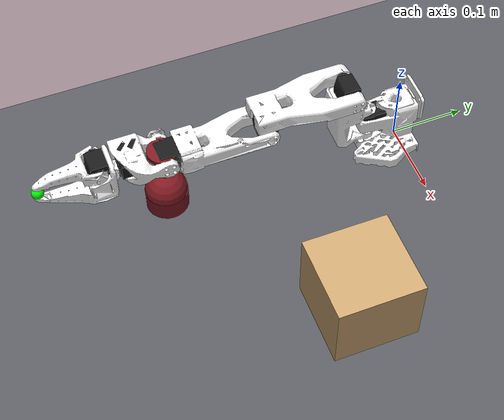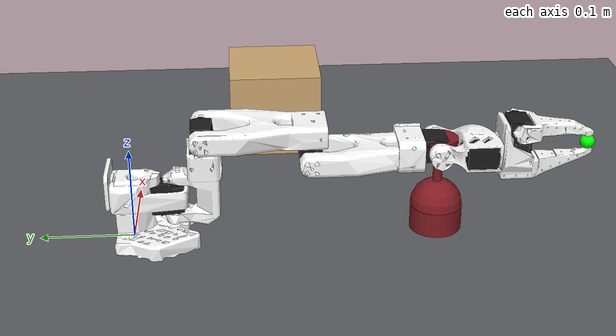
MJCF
<mujoco model="so_arm100 flip scene">
  <include file="so_arm100.xml"/>

  <visual>
    <headlight diffuse="0.6 0.6 0.6" ambient="0.3 0.3 0.3" specular="0 0 0"/>
    <rgba haze="0.15 0.25 0.35 1"/>
    <global azimuth="45" elevation="-20"/>
  </visual>

  <asset>
    <texture type="skybox" builtin="gradient" rgb1="0.3 0.5 0.7" rgb2="0 0 0" width="512" height="3072"/>
    <material name="floor" rgba="0.35 0.36 0.38 1" reflectance="0.1"/>
    <material name="shelf" rgba="0.80 0.65 0.44 1"/>
    <!-- Deep red: the arm is white and the shelf pale wood, so the thing the policy
         has to localise is the only saturated colour in the frame. -->
    <material name="glass" rgba="0.50 0.10 0.13 1" reflectance="0.35" specular="0.9" shininess="0.9"/>
  </asset>

  <worldbody>
    <camera name="front" fovy="45" pos="0.2667 0.2517 0.4556"
            xyaxes="-0.9388 0.3444 0.0000 -0.1998 -0.5448 0.8144"/>
    <!-- Off-axis so lifted objects cast displaced shadows: the only depth cue a fixed camera gets -->
    <light pos="0.5 0.3 1.2" dir="-0.35 -0.25 -1" directional="true"/>
    <geom name="floor" size="0 0 0.05" type="plane" material="floor"/>

    <geom name="shelf" type="box" pos="0.24 -0.16 0.05" size="0.055 0.055 0.05" material="shelf"/>

    <!-- Wine glass, upside down: quat flips it so the bowl rim rests on the floor and
         the stem points up. Grasped at the stem; base and bowl are the flanges. -->
    <body name="glass" pos="0 -0.325 0.106" quat="0 1 0 0">
      <freejoint name="glass"/>
      <geom name="glass_base" type="cylinder" size="0.020 0.003" pos="0 0 0.003"
            material="glass" density="120" friction="1.0 0.05 0.001"/>
      <geom name="glass_stem" type="cylinder" size="0.005 0.022" pos="0 0 0.028"
            material="glass" density="120" friction="1.5 0.05 0.001"/>
      <!-- Bowl: rounded where it meets the stem, flat-open at the rim. Upside down the
           rim's flat face is what rests on the floor, so the curve costs no stability. -->
      <geom name="glass_bowl_dome" type="ellipsoid" size="0.028 0.028 0.028" pos="0 0 0.078"
            material="glass" density="120" friction="1.0 0.05 0.001"/>
      <geom name="glass_bowl_rim" type="cylinder" size="0.028 0.014" pos="0 0 0.092"
            material="glass" density="120" friction="1.0 0.05 0.001"/>
    </body>
  </worldbody>

  <contact>
    <pair geom1="fixed_jaw_pad_1" geom2="glass_stem" condim="6" friction="2 2 0.1 0.02 0.02" solref="0.004 1" solimp="0.98 0.999 0.001"/>
    <pair geom1="fixed_jaw_pad_2" geom2="glass_stem" condim="6" friction="2 2 0.1 0.02 0.02" solref="0.004 1" solimp="0.98 0.999 0.001"/>
    <pair geom1="fixed_jaw_pad_3" geom2="glass_stem" condim="6" friction="2 2 0.1 0.02 0.02" solref="0.004 1" solimp="0.98 0.999 0.001"/>
    <pair geom1="fixed_jaw_pad_4" geom2="glass_stem" condim="6" friction="2 2 0.1 0.02 0.02" solref="0.004 1" solimp="0.98 0.999 0.001"/>
    <pair geom1="moving_jaw_pad_1" geom2="glass_stem" condim="6" friction="2 2 0.1 0.02 0.02" solref="0.004 1" solimp="0.98 0.999 0.001"/>
    <pair geom1="moving_jaw_pad_2" geom2="glass_stem" condim="6" friction="2 2 0.1 0.02 0.02" solref="0.004 1" solimp="0.98 0.999 0.001"/>
    <pair geom1="moving_jaw_pad_3" geom2="glass_stem" condim="6" friction="2 2 0.1 0.02 0.02" solref="0.004 1" solimp="0.98 0.999 0.001"/>
    <pair geom1="moving_jaw_pad_4" geom2="glass_stem" condim="6" friction="2 2 0.1 0.02 0.02" solref="0.004 1" solimp="0.98 0.999 0.001"/>
  </contact>
  <!-- Full start state: the arm's own `home` key predates the glass, so loading it
       would reset the free joint to the origin. -->
  <keyframe>
    <key name="start"
         qpos="0 -1.57 1.57 1.57 -1.57 0  0 -0.325 0.106  0 1 0 0"
         ctrl="0 -1.57 1.57 1.57 -1.57 0"/>
  </keyframe>
</mujoco>

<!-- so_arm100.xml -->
<mujoco model="so_arm100">
  <compiler angle="radian" meshdir="../../../../../scenes/so100_flip/assets/"/>

  <option cone="elliptic" impratio="10"/>

  <asset>
    <material name="white" rgba="1 1 1 1"/>
    <material name="black" rgba="0.1 0.1 0.1 1"/>

    <mesh name="Base" file="Base.stl"/>
    <mesh name="Base_Motor" file="Base_Motor.stl"/>
    <mesh name="Rotation_Pitch" file="Rotation_Pitch.stl"/>
    <mesh name="Rotation_Pitch_Motor" file="Rotation_Pitch_Motor.stl"/>
    <mesh name="Upper_Arm" file="Upper_Arm.stl"/>
    <mesh name="Upper_Arm_Motor" file="Upper_Arm_Motor.stl"/>
    <mesh name="Lower_Arm" file="Lower_Arm.stl"/>
    <mesh name="Lower_Arm_Motor" file="Lower_Arm_Motor.stl"/>
    <mesh name="Wrist_Pitch_Roll" file="Wrist_Pitch_Roll.stl"/>
    <mesh name="Wrist_Pitch_Roll_Motor" file="Wrist_Pitch_Roll_Motor.stl"/>
    <mesh name="Fixed_Jaw" file="Fixed_Jaw.stl"/>
    <mesh name="Fixed_Jaw_Motor" file="Fixed_Jaw_Motor.stl"/>
    <mesh name="Fixed_Jaw_Collision_1" file="Fixed_Jaw_Collision_1.stl"/>
    <mesh name="Fixed_Jaw_Collision_2" file="Fixed_Jaw_Collision_2.stl"/>
    <mesh name="Moving_Jaw" file="Moving_Jaw.stl"/>
    <mesh name="Moving_Jaw_Collision_1" file="Moving_Jaw_Collision_1.stl"/>
    <mesh name="Moving_Jaw_Collision_2" file="Moving_Jaw_Collision_2.stl"/>
    <mesh name="Moving_Jaw_Collision_3" file="Moving_Jaw_Collision_3.stl"/>
  </asset>

  <default>
    <default class="so_arm100">
      <joint frictionloss="0.1" armature="0.1"/>
      <position kp="50" dampratio="1" forcerange="-3.5 3.5"/>
      <default class="Rotation">
        <joint axis="0 1 0" range="-1.92 1.92"/>
      </default>
      <default class="Pitch">
        <joint axis="1 0 0" range="-3.32 0.174"/>
      </default>
      <default class="Elbow">
        <joint axis="1 0 0" range="-0.174 3.14"/>
      </default>
      <default class="Wrist_Pitch">
        <joint axis="1 0 0" range="-1.66 1.66"/>
      </default>
      <default class="Wrist_Roll">
        <joint axis="0 1 0" range="-2.79 2.79"/>
      </default>
      <default class="Jaw">
        <joint axis="0 0 1" range="-0.174 1.75"/>
      </default>
      <default class="visual">
        <geom type="mesh" contype="0" conaffinity="0" density="0" group="2" material="white"/>
        <default class="motor_visual">
          <geom material="black"/>
        </default>
      </default>
      <default class="collision">
        <geom group="3" type="mesh" material="white"/>
        <default class="finger_collision">
          <geom type="box" solimp="2 1 0.01" solref="0.01 1" friction="1 0.005 0.0001"/>
        </default>
      </default>
    </default>
  </default>

  <worldbody>
    <body name="Base" childclass="so_arm100">
      <geom type="mesh" mesh="Base" class="visual"/>
      <geom type="mesh" mesh="Base_Motor" class="motor_visual"/>
      <geom type="mesh" mesh="Base" class="collision"/>
      <body name="Rotation_Pitch" pos="0 -0.0452 0.0165" quat="0.707105 0.707108 0 0">
        <inertial pos="-9.07886e-05 0.0590972 0.031089" quat="0.363978 0.441169 -0.623108 0.533504" mass="0.119226"
          diaginertia="5.94278e-05 5.89975e-05 3.13712e-05"/>
        <joint name="Rotation" class="Rotation"/>
        <geom type="mesh" mesh="Rotation_Pitch" class="visual"/>
        <geom type="mesh" mesh="Rotation_Pitch_Motor" class="motor_visual"/>
        <geom type="mesh" mesh="Rotation_Pitch" class="collision"/>
        <body name="Upper_Arm" pos="0 0.1025 0.0306" euler="1.57079 0 0">
          <inertial pos="-1.72052e-05 0.0701802 0.00310545" quat="0.50104 0.498994 -0.493562 0.50632" mass="0.162409"
            diaginertia="0.000213312 0.000167164 7.01522e-05"/>
          <joint name="Pitch" class="Pitch"/>
          <geom type="mesh" mesh="Upper_Arm" class="visual"/>
          <geom type="mesh" mesh="Upper_Arm_Motor" class="motor_visual"/>
          <geom type="mesh" mesh="Upper_Arm" class="collision"/>
          <body name="Lower_Arm" pos="0 0.11257 0.028" euler="-1.57079 0 0">
            <inertial pos="-0.00339604 0.00137796 0.0768007" quat="0.701995 0.0787996 0.0645626 0.704859"
              mass="0.147968" diaginertia="0.000138803 0.000107748 4.84242e-05"/>
            <joint name="Elbow" class="Elbow"/>
            <geom type="mesh" mesh="Lower_Arm" class="visual"/>
            <geom type="mesh" mesh="Lower_Arm_Motor" class="motor_visual"/>
            <geom type="mesh" mesh="Lower_Arm" class="collision"/>
            <body name="Wrist_Pitch_Roll" pos="0 0.0052 0.1349" euler="-1.57079 0 0">
              <inertial pos="-0.00852653 -0.0352279 -2.34622e-05" quat="-0.0522806 0.705235 0.0549524 0.704905"
                mass="0.0661321" diaginertia="3.45403e-05 2.39041e-05 1.94704e-05"/>
              <joint name="Wrist_Pitch" class="Wrist_Pitch"/>
              <geom type="mesh" mesh="Wrist_Pitch_Roll" class="visual"/>
              <geom type="mesh" mesh="Wrist_Pitch_Roll_Motor" class="motor_visual"/>
              <geom type="mesh" mesh="Wrist_Pitch_Roll" class="collision"/>
              <body name="Fixed_Jaw" pos="0 -0.0601 0" euler="0 1.57079 0">
                <!-- Viewpoint only: no geom, no mass, no collision. Same pose as the
                     new arm's camera so the two views are comparable. -->
                <camera name="wrist" pos="0.0020 -0.0257 -0.0536"
                        xyaxes="-0.9997 0.0264 0.0000 0.0153 0.5797 0.8147" fovy="70"/>
                <!-- The wrist camera mirrored to the other wrist-roll branch. -->
                <camera name="wrist_below" pos="-0.0020 -0.0257 0.0536" xyaxes="0.9997 0.0264 0.0000 -0.0153 0.5797 -0.8147" fovy="70"/>
                <site name="tip" pos="0 -0.101 0" size="0.008" rgba="0 1 0 1"/>
                <inertial pos="0.00552377 -0.0280167 0.000483583" quat="0.41836 0.620891 -0.350644 0.562599"
                  mass="0.0929859" diaginertia="5.03136e-05 4.64098e-05 2.72961e-05"/>
                <joint name="Wrist_Roll" class="Wrist_Roll"/>
                <geom type="mesh" mesh="Fixed_Jaw" class="visual"/>
                <geom type="mesh" mesh="Fixed_Jaw_Motor" class="motor_visual"/>
                <geom type="mesh" mesh="Fixed_Jaw_Collision_1" class="collision"/>
                <geom type="mesh" mesh="Fixed_Jaw_Collision_2" class="collision"/>
                <geom class="finger_collision" name="fixed_jaw_pad_1" size="0.001 0.005 0.004" pos="0.0089 -0.1014 0"/>
                <geom class="finger_collision" name="fixed_jaw_pad_2" size="0.001 0.005 0.006" pos="0.0109 -0.0914 0"/>
                <geom class="finger_collision" name="fixed_jaw_pad_3" size="0.001 0.01 0.007" pos="0.0126 -0.0768 0"/>
                <geom class="finger_collision" name="fixed_jaw_pad_4" size="0.001 0.01 0.008" pos="0.0143 -0.0572 0"/>
                <body name="Moving_Jaw" pos="-0.0202 -0.0244 0" quat="1.34924e-11 -3.67321e-06 1 -3.67321e-06">
                  <inertial pos="-0.00161745 -0.0303473 0.000449646" quat="0.696562 0.716737 -0.0239844 -0.0227026"
                    mass="0.0202444" diaginertia="1.11265e-05 8.99651e-06 2.99548e-06"/>
                  <joint name="Jaw" class="Jaw"/>
                  <geom type="mesh" mesh="Moving_Jaw" class="visual"/>
                  <geom type="mesh" mesh="Moving_Jaw_Collision_1" class="collision"/>
                  <geom type="mesh" mesh="Moving_Jaw_Collision_2" class="collision"/>
                  <geom type="mesh" mesh="Moving_Jaw_Collision_3" class="collision"/>
                  <geom class="finger_collision" name="moving_jaw_pad_1" size="0.001 0.005 0.004"
                    pos="-0.0113 -0.077 0"/>
                  <geom class="finger_collision" name="moving_jaw_pad_2" size="0.001 0.005 0.006"
                    pos="-0.0093 -0.067 0"/>
                  <geom class="finger_collision" name="moving_jaw_pad_3" size="0.001 0.01 0.006"
                    pos="-0.0073 -0.055 0"/>
                  <geom class="finger_collision" name="moving_jaw_pad_4" size="0.001 0.01 0.008"
                    pos="-0.0073 -0.035 0"/>
                </body>
              </body>
            </body>
          </body>
        </body>
      </body>
    </body>
  </worldbody>

  <actuator>
    <position class="Rotation" name="Rotation" joint="Rotation" inheritrange="1"/>
    <position class="Pitch" name="Pitch" joint="Pitch" inheritrange="1"/>
    <position class="Elbow" name="Elbow" joint="Elbow" inheritrange="1"/>
    <position class="Wrist_Pitch" name="Wrist_Pitch" joint="Wrist_Pitch" inheritrange="1"/>
    <position class="Wrist_Roll" name="Wrist_Roll" joint="Wrist_Roll" inheritrange="1"/>
    <position class="Jaw" name="Jaw" joint="Jaw" inheritrange="1"/>
  </actuator>

  <contact>
    <exclude body1="Base" body2="Rotation_Pitch"/>
  </contact>

  <keyframe>
    <key name="home" qpos="0 -1.57 1.57 1.57 -1.57 0" ctrl="0 -1.57 1.57 1.57 -1.57 0"/>
    <key name="rest" qpos="0 -3.32 3.11 1.18 0 -0.174" ctrl="0 -3.32 3.11 1.18 0 -0.174"/>
  </keyframe>
</mujoco>
